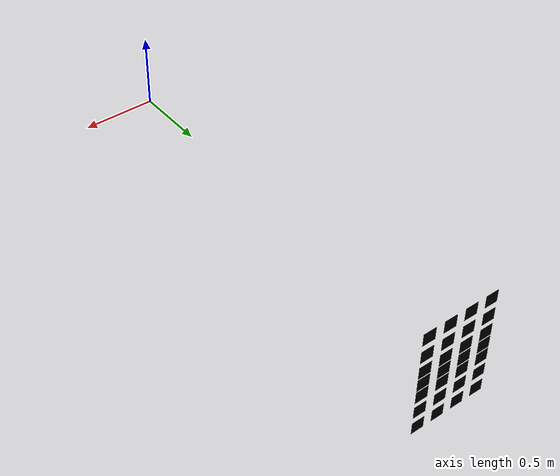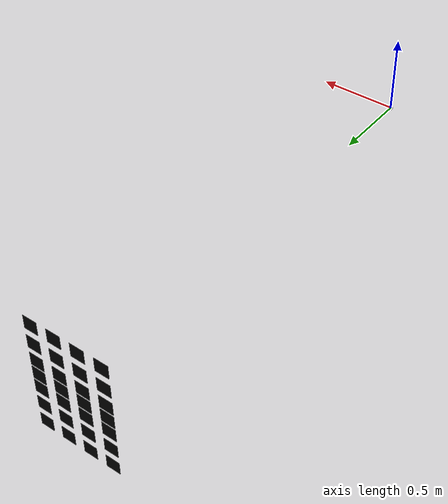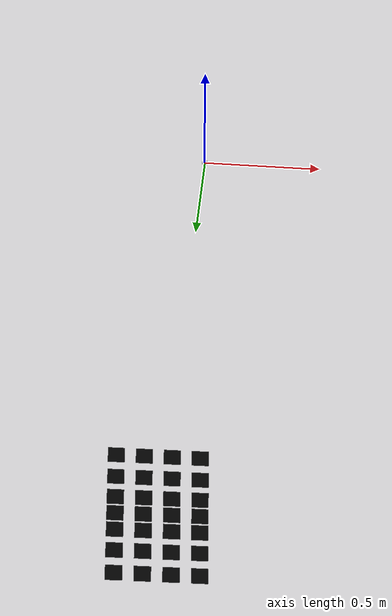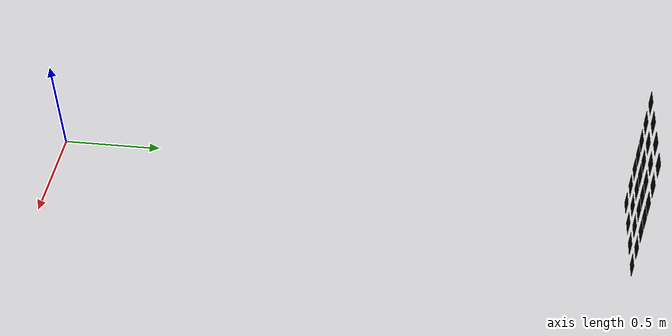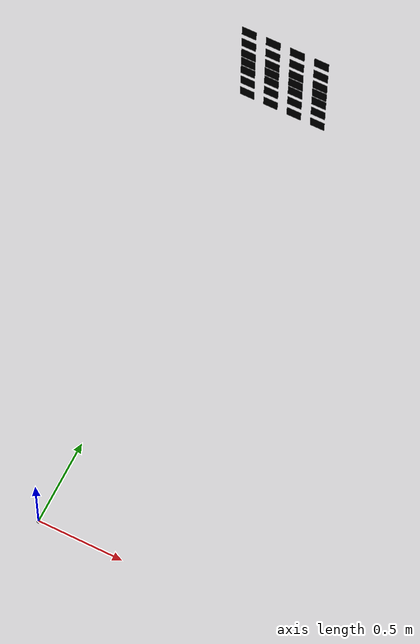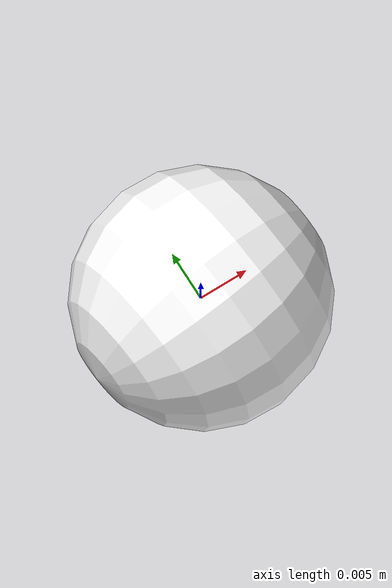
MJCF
<?xml version="1.0"?>
<mujoco>
    <compiler angle="radian"/>
    <option collision="predefined" timestep="0.002"/>
    <size njmax="1000" nconmax="400"/>
    <default class="main">
        <default class="eye">
            <position ctrllimited="true" kp="10"/>
            <joint type="hinge" stiffness="0.0" damping="0.05" armature="0.0" limited="true"/>
        </default>

        <default class="head-rotations">
            <position ctrllimited="true" kp="10"/>
            <joint type="hinge" stiffness="0.0" damping="0.25" armature="0.0" limited="true"/>
        </default>

        <default class="smart-glass-grid">
            <geom type="box" size="0.045 0.0000001 0.045" rgba="0 0 0 1"/>
        </default>

    </default>
    <asset>
        <texture type="skybox" builtin="gradient" rgb1="1 1 1" rgb2="0.6 0.8 1" width="256" height="256"/>
        <texture type="cube" name="blue-eye" file="assets/blue_eye_texture_circle.png" gridsize="3 4" gridlayout=".U..LFRB.D.."/>
        <material name="blue-eye" texture="blue-eye" texuniform="true"/>
        <mesh name="eye" file="assets/basic_eye_2.stl" scale="0.05 0.05 0.05"/>
    </asset>
    <worldbody>
        <light name="scene_directional_light" directional="true" castshadow="false" cutoff="4" exponent="20"
               diffuse="1 1 1" specular="0 0 0" pos=".9 .3 2.5"/>

        <camera name="env" pos="0.35 -0.35 0.15" euler="1.4 0.5 0.12"/>

        <body name="eye" pos="0 0 0" quat="0.7071068 0.7071068 0 0">
                <geom name="eye" type="sphere" size="0.0125" material="blue-eye" rgba="1 1 1 1" quat="0.6625191 0.0130711 0.7488417 0.0115643"/>
                <camera name="eye" fovy="90"/>
                <joint name="eye-joint-x" class="eye" axis="1 0 0" range="-0.7854 0.7854"/>
                <joint name="eye-joint-y" class="eye" axis="0 1 0" range="-0.7854 0.7854"/>
                <site name="rangefinder-site" quat="0 0 1 0"/>
        </body>

        <body name="head" pos="0 0 0">
            <body name="smart-glass-pane-interline-spacing-100" pos="0 3 0">
<!--                line gap = (3+1) * word height-->
                <geom name="grid-1" pos="-0.225 0 0.36" class="smart-glass-grid"/>
                <geom name="grid-2" pos="-0.075 0 0.36" class="smart-glass-grid"/>
                <geom name="grid-3" pos="0.075 0 0.36" class="smart-glass-grid"/>
                <geom name="grid-4" pos="0.225 0 0.36" class="smart-glass-grid"/>

                <geom name="grid-5" pos="-0.225 0 0" class="smart-glass-grid"/>
                <geom name="grid-6" pos="-0.075 0 0" class="smart-glass-grid"/>
                <geom name="grid-7" pos="0.075 0 0" class="smart-glass-grid"/>
                <geom name="grid-8" pos="0.225 0 0" class="smart-glass-grid"/>

                <geom name="grid-9" pos="-0.225 0 -0.36" class="smart-glass-grid"/>
                <geom name="grid-10" pos="-0.075 0 -0.36" class="smart-glass-grid"/>
                <geom name="grid-11" pos="0.075 0 -0.36" class="smart-glass-grid"/>
                <geom name="grid-12" pos="0.225 0 -0.36" class="smart-glass-grid"/>
            </body>

            <body name="smart-glass-pane-interline-spacing-50" pos="0 3 0">
<!--                line gap = (1.5+1) * word height-->
                <geom name="grid-13" pos="-0.225 0 0.225" class="smart-glass-grid"/>
                <geom name="grid-14" pos="-0.075 0 0.225" class="smart-glass-grid"/>
                <geom name="grid-15" pos="0.075 0 0.225" class="smart-glass-grid"/>
                <geom name="grid-16" pos="0.225 0 0.225" class="smart-glass-grid"/>

                <geom name="grid-17" pos="-0.225 0 0" class="smart-glass-grid"/>
                <geom name="grid-18" pos="-0.075 0 0" class="smart-glass-grid"/>
                <geom name="grid-19" pos="0.075 0 0" class="smart-glass-grid"/>
                <geom name="grid-20" pos="0.225 0 0" class="smart-glass-grid"/>

                <geom name="grid-21" pos="-0.225 0 -0.225" class="smart-glass-grid"/>
                <geom name="grid-22" pos="-0.075 0 -0.225" class="smart-glass-grid"/>
                <geom name="grid-23" pos="0.075 0 -0.225" class="smart-glass-grid"/>
                <geom name="grid-24" pos="0.225 0 -0.225" class="smart-glass-grid"/>
            </body>

            <body name="smart-glass-pane-interline-spacing-0" pos="0 3 0">
<!--                line gap = (0+1) * word height-->
                <geom name="grid-25" pos="-0.225 0 0.10" class="smart-glass-grid"/>
                <geom name="grid-26" pos="-0.075 0 0.10" class="smart-glass-grid"/>
                <geom name="grid-27" pos="0.075 0 0.10" class="smart-glass-grid"/>
                <geom name="grid-28" pos="0.225 0 0.10" class="smart-glass-grid"/>

                <geom name="grid-29" pos="-0.225 0 0" class="smart-glass-grid"/>
                <geom name="grid-30" pos="-0.075 0 0" class="smart-glass-grid"/>
                <geom name="grid-31" pos="0.075 0 0" class="smart-glass-grid"/>
                <geom name="grid-32" pos="0.225 0 0" class="smart-glass-grid"/>

                <geom name="grid-33" pos="-0.225 0 -0.10" class="smart-glass-grid"/>
                <geom name="grid-34" pos="-0.075 0 -0.10" class="smart-glass-grid"/>
                <geom name="grid-35" pos="0.075 0 -0.10" class="smart-glass-grid"/>
                <geom name="grid-36" pos="0.225 0 -0.10" class="smart-glass-grid"/>
            </body>

            <joint name="head-joint-x" class="head-rotations" axis="1 0 0" range="-1 1"/>
            <joint name="head-joint-z" class="head-rotations" axis="0 0 1" range="-1 1"/>
        </body>

    </worldbody>
    <actuator>
        <position name="eye-x-motor" joint="eye-joint-x" class="eye" ctrlrange="-0.7854 0.7854"/>
        <position name="eye-y-motor" joint="eye-joint-y" class="eye" ctrlrange="-0.7854 0.7854"/>
        <position name="head-x-motor" joint="head-joint-x" class="head-rotations" ctrlrange="-0.07 0.07"/>
        <position name="head-z-motor" joint="head-joint-z" class="head-rotations" ctrlrange="-0.15 0.15"/>
    </actuator>
    <sensor>
        <rangefinder name="rangefinder" site="rangefinder-site"/>
    </sensor>
</mujoco>
